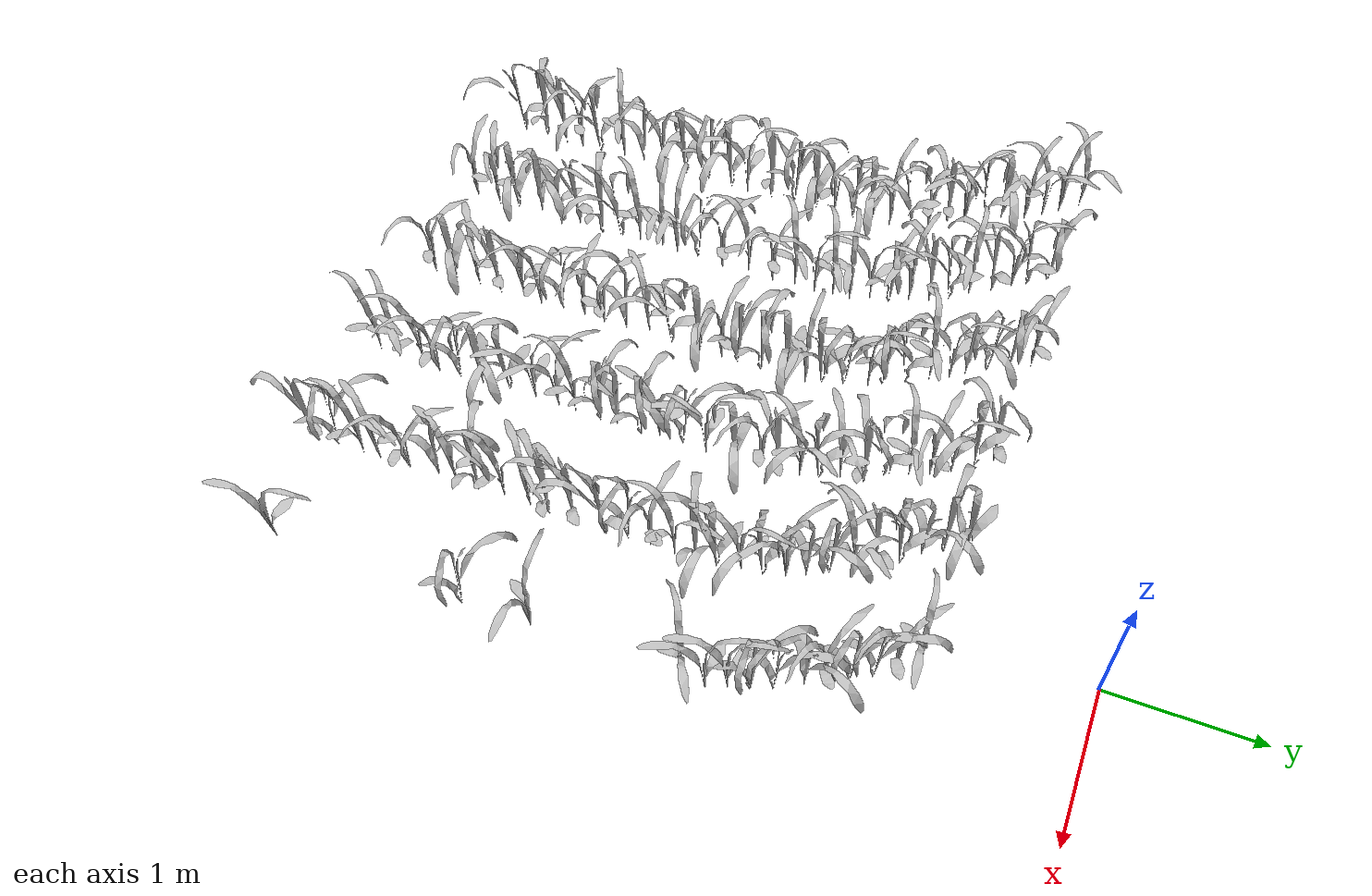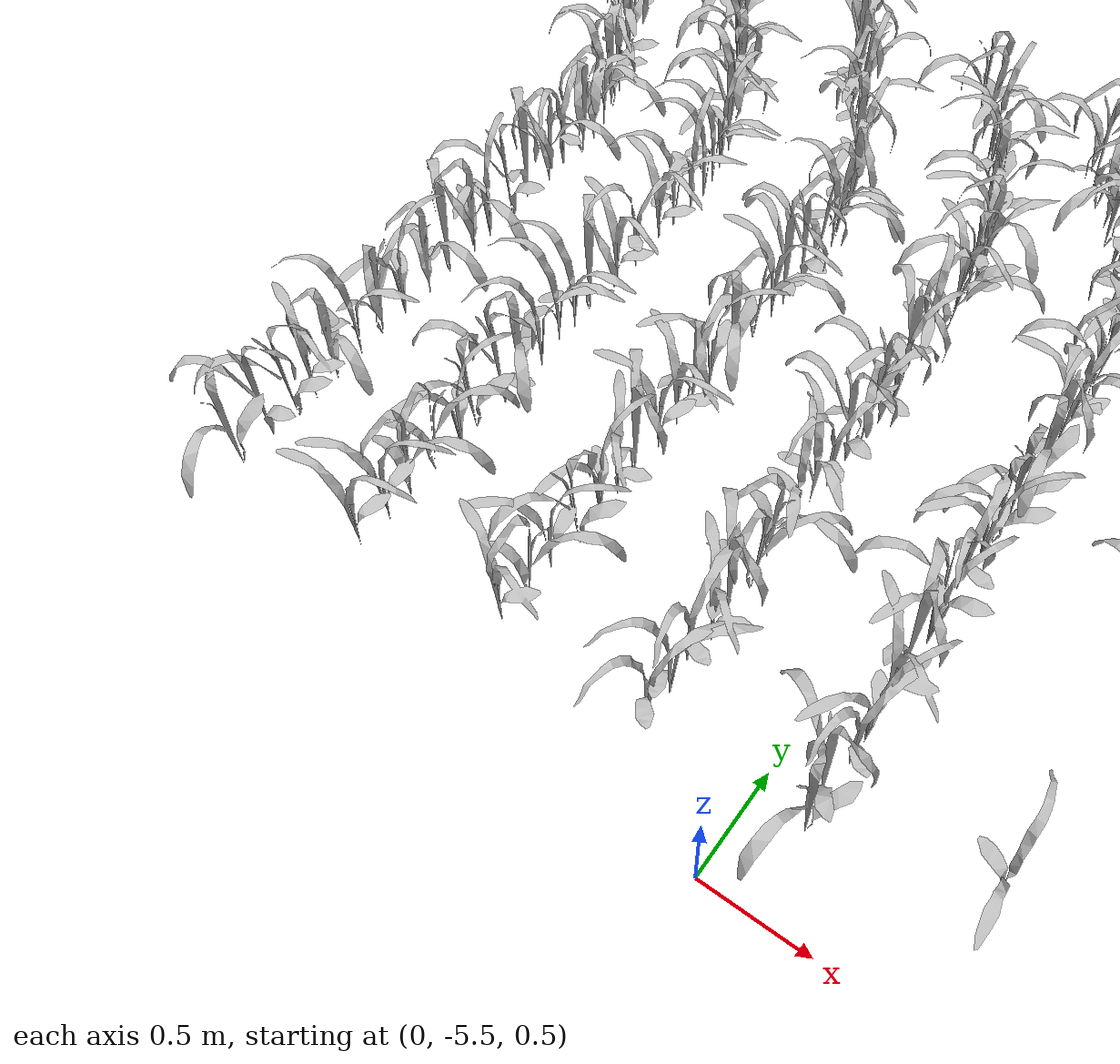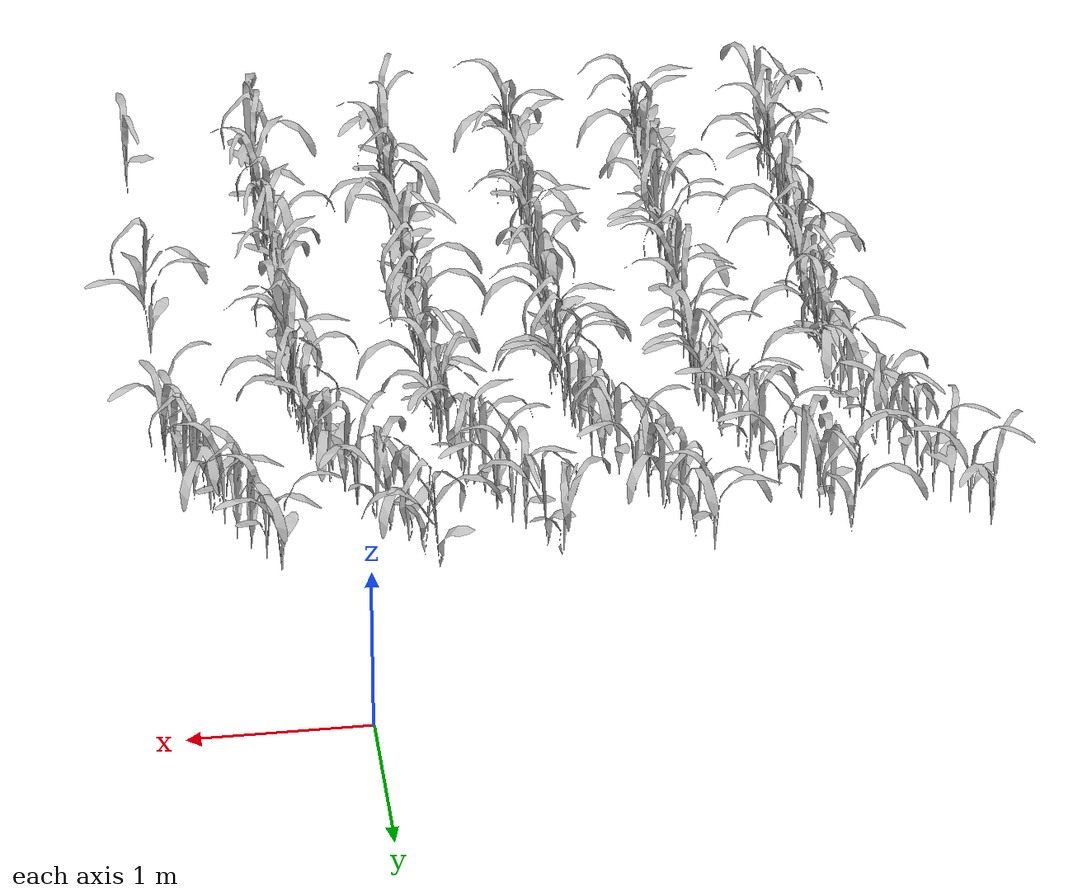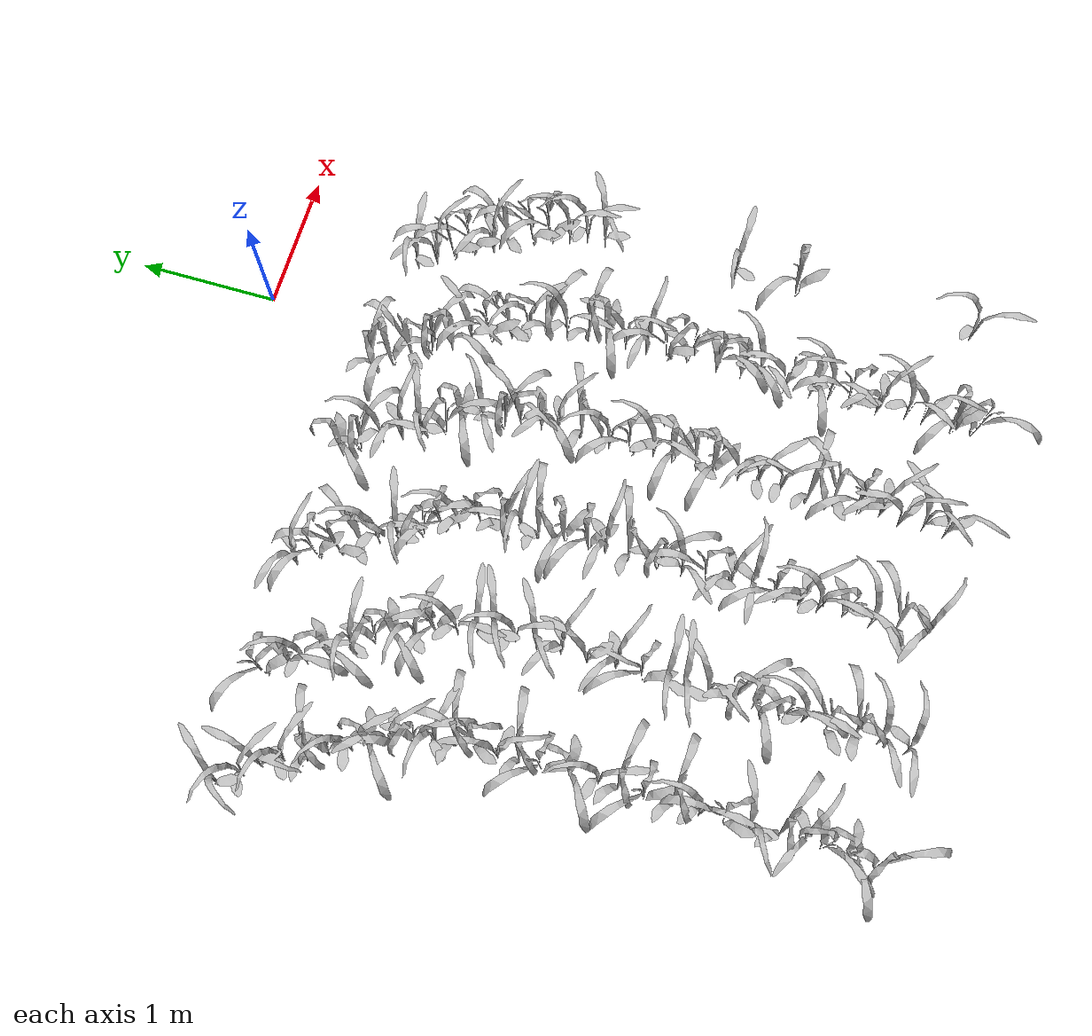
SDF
<sdf version="1.6">
 <world name="default">
  <include>
   <uri>model://maize_01</uri>
   <pose>-2.8149662046243322 -5.036532200256407 0.2987472165300224 0.0 0.0 5.894875012676836</pose>
   <name>maize_01_0000</name>
   <static>true</static>
  </include>
  <include>
   <uri>model://maize_01</uri>
   <pose>-2.809477527307368 -4.8400392186208 0.2987472165300224 0.0 0.0 4.363037747194006</pose>
   <name>maize_01_0001</name>
   <static>true</static>
  </include>
  <include>
   <uri>model://maize_01</uri>
   <pose>-2.7934535225200245 -4.68458728142989 0.2987472165300224 0.0 0.0 4.82953336246158</pose>
   <name>maize_01_0002</name>
   <static>true</static>
  </include>
  <include>
   <uri>model://maize_02</uri>
   <pose>-2.796779158858809 -4.5589871454011 0.2987472165300224 0.0 0.0 4.8684863078724385</pose>
   <name>maize_02_0003</name>
   <static>true</static>
  </include>
  <include>
   <uri>model://maize_01</uri>
   <pose>-2.795504382018359 -4.414495596811592 0.2987472165300224 0.0 0.0 0.4380697121282974</pose>
   <name>maize_01_0004</name>
   <static>true</static>
  </include>
  <include>
   <uri>model://maize_02</uri>
   <pose>-2.810753175358018 -4.226863867417673 0.2987472165300224 0.0 0.0 2.5570488509744598</pose>
   <name>maize_02_0005</name>
   <static>true</static>
  </include>
  <include>
   <uri>model://maize_01</uri>
   <pose>-2.81115481818274 -4.068038992379891 0.2987472165300224 0.0 0.0 2.433150421425094</pose>
   <name>maize_01_0006</name>
   <static>true</static>
  </include>
  <include>
   <uri>model://maize_02</uri>
   <pose>-2.8059342616971032 -3.9068965869558956 0.2987472165300224 0.0 0.0 0.46947598814061914</pose>
   <name>maize_02_0007</name>
   <static>true</static>
  </include>
  <include>
   <uri>model://maize_01</uri>
   <pose>-2.795099697665013 -3.7324073315395716 0.2987472165300224 0.0 0.0 0.7222739742540812</pose>
   <name>maize_01_0008</name>
   <static>true</static>
  </include>
  <include>
   <uri>model://maize_01</uri>
   <pose>-2.8096855687190865 -3.5520285328730514 0.2987472165300224 0.0 0.0 3.2039003910198036</pose>
   <name>maize_01_0009</name>
   <static>true</static>
  </include>
  <include>
   <uri>model://maize_01</uri>
   <pose>-2.7974254057102166 -3.3761085308729215 0.2997633349279468 0.0 0.0 0.6338193416331112</pose>
   <name>maize_01_0010</name>
   <static>true</static>
  </include>
  <include>
   <uri>model://maize_02</uri>
   <pose>-2.7935960507060424 -3.2483509228334326 0.2997633349279468 0.0 0.0 0.8870863604376874</pose>
   <name>maize_02_0011</name>
   <static>true</static>
  </include>
  <include>
   <uri>model://maize_01</uri>
   <pose>-2.7944472227529724 -3.057295577552061 0.2997633349279468 0.0 0.0 4.464149751738774</pose>
   <name>maize_01_0012</name>
   <static>true</static>
  </include>
  <include>
   <uri>model://maize_01</uri>
   <pose>-2.8186819191843164 -2.8945732437068434 0.3000073711710849 0.0 0.0 3.1398318236015252</pose>
   <name>maize_01_0013</name>
   <static>true</static>
  </include>
  <include>
   <uri>model://maize_01</uri>
   <pose>-2.802429662213426 -2.732400205703364 0.3000073711710849 0.0 0.0 0.9747646402250957</pose>
   <name>maize_01_0014</name>
   <static>true</static>
  </include>
  <include>
   <uri>model://maize_02</uri>
   <pose>-2.8135162554699322 -2.5912148178040884 0.3000073711710849 0.0 0.0 4.017603059819496</pose>
   <name>maize_02_0015</name>
   <static>true</static>
  </include>
  <include>
   <uri>model://maize_01</uri>
   <pose>-2.7914492188478732 -2.445866679618181 0.3000073711710849 0.0 0.0 2.224783643792515</pose>
   <name>maize_01_0016</name>
   <static>true</static>
  </include>
  <include>
   <uri>model://maize_01</uri>
   <pose>-2.8083234187623902 -2.320516576724049 0.3000073711710849 0.0 0.0 0.9779870854339036</pose>
   <name>maize_01_0017</name>
   <static>true</static>
  </include>
  <include>
   <uri>model://maize_02</uri>
   <pose>-2.837392890390448 -2.18724849604011 0.3000073711710849 0.0 0.0 1.9218371855780423</pose>
   <name>maize_02_0018</name>
   <static>true</static>
  </include>
  <include>
   <uri>model://maize_01</uri>
   <pose>-2.877807266111874 -2.0593476101850006 0.3000073711710849 0.0 0.0 5.924432845800086</pose>
   <name>maize_01_0019</name>
   <static>true</static>
  </include>
  <include>
   <uri>model://maize_02</uri>
   <pose>-2.9191221647541665 -1.9238190918331617 0.3000073711710849 0.0 0.0 4.4604900075646245</pose>
   <name>maize_02_0020</name>
   <static>true</static>
  </include>
  <include>
   <uri>model://maize_01</uri>
   <pose>-2.978187307036609 -1.8011241727258536 0.3000073711710849 0.0 0.0 4.599854090873884</pose>
   <name>maize_01_0021</name>
   <static>true</static>
  </include>
  <include>
   <uri>model://maize_02</uri>
   <pose>-3.033159196684417 -1.6951025352394338 0.3000073711710849 0.0 0.0 1.3549015476638713</pose>
   <name>maize_02_0022</name>
   <static>true</static>
  </include>
  <include>
   <uri>model://maize_01</uri>
   <pose>-3.1022475428299114 -1.5675113088376633 0.3000073711710849 0.0 0.0 5.831072665439621</pose>
   <name>maize_01_0023</name>
   <static>true</static>
  </include>
  <include>
   <uri>model://maize_01</uri>
   <pose>-3.156738683040348 -1.4574072585174689 0.3000073711710849 0.0 0.0 1.1311388279408856</pose>
   <name>maize_01_0024</name>
   <static>true</static>
  </include>
  <include>
   <uri>model://maize_02</uri>
   <pose>-3.21237578114864 -1.3020230036605802 0.29996374720717184 0.0 0.0 1.7867516960716405</pose>
   <name>maize_02_0025</name>
   <static>true</static>
  </include>
  <include>
   <uri>model://maize_02</uri>
   <pose>-3.289669552640869 -1.1908592170727783 0.29996374720717184 0.0 0.0 3.5619589033067767</pose>
   <name>maize_02_0026</name>
   <static>true</static>
  </include>
  <include>
   <uri>model://maize_02</uri>
   <pose>-3.3761114003888917 -1.088862409862166 0.29996374720717184 0.0 0.0 1.6566801443292551</pose>
   <name>maize_02_0027</name>
   <static>true</static>
  </include>
  <include>
   <uri>model://maize_02</uri>
   <pose>-3.4727268601063535 -0.963268275777607 0.29996374720717184 0.0 0.0 3.033199364283431</pose>
   <name>maize_02_0028</name>
   <static>true</static>
  </include>
  <include>
   <uri>model://maize_02</uri>
   <pose>-2.0720008120603652 -5.056959439686576 0.2986650895739808 0.0 0.0 5.433162248212113</pose>
   <name>maize_02_0072</name>
   <static>true</static>
  </include>
  <include>
   <uri>model://maize_02</uri>
   <pose>-2.0604202672663607 -4.876991809399276 0.2986650895739808 0.0 0.0 5.732482879605926</pose>
   <name>maize_02_0073</name>
   <static>true</static>
  </include>
  <include>
   <uri>model://maize_01</uri>
   <pose>-2.0623178033263856 -4.728139188529193 0.2986650895739808 0.0 0.0 1.1685631404289298</pose>
   <name>maize_01_0074</name>
   <static>true</static>
  </include>
  <include>
   <uri>model://maize_01</uri>
   <pose>-2.0725461581432794 -4.546987889401581 0.2986650895739808 0.0 0.0 1.6788264592846718</pose>
   <name>maize_01_0075</name>
   <static>true</static>
  </include>
  <include>
   <uri>model://maize_02</uri>
   <pose>-2.045092617244395 -4.389387876042935 0.29950354338867896 0.0 0.0 0.2961285172845409</pose>
   <name>maize_02_0076</name>
   <static>true</static>
  </include>
  <include>
   <uri>model://maize_01</uri>
   <pose>-2.0723696797346842 -4.247816933443073 0.29950354338867896 0.0 0.0 5.338776407005515</pose>
   <name>maize_01_0077</name>
   <static>true</static>
  </include>
  <include>
   <uri>model://maize_01</uri>
   <pose>-2.051345492641678 -4.060346822229589 0.29950354338867896 0.0 0.0 4.309868092103136</pose>
   <name>maize_01_0078</name>
   <static>true</static>
  </include>
  <include>
   <uri>model://maize_01</uri>
   <pose>-2.061749816803312 -3.9255076257861146 0.29950354338867896 0.0 0.0 6.275968553937282</pose>
   <name>maize_01_0079</name>
   <static>true</static>
  </include>
  <include>
   <uri>model://maize_02</uri>
   <pose>-2.0497267231624785 -3.7733650203013442 0.2997755151784565 0.0 0.0 2.9649433481723713</pose>
   <name>maize_02_0080</name>
   <static>true</static>
  </include>
  <include>
   <uri>model://maize_02</uri>
   <pose>-2.0664115051492202 -3.6102853509258717 0.2997755151784565 0.0 0.0 2.3529346517370366</pose>
   <name>maize_02_0081</name>
   <static>true</static>
  </include>
  <include>
   <uri>model://maize_02</uri>
   <pose>-2.057536152541018 -3.496669215509953 0.2997755151784565 0.0 0.0 2.2343980601328997</pose>
   <name>maize_02_0082</name>
   <static>true</static>
  </include>
  <include>
   <uri>model://maize_01</uri>
   <pose>-2.0747892759641062 -3.3461553845241734 0.2997755151784565 0.0 0.0 2.995296953165401</pose>
   <name>maize_01_0083</name>
   <static>true</static>
  </include>
  <include>
   <uri>model://maize_02</uri>
   <pose>-2.042679067957536 -3.153340965036183 0.3005045593256401 0.0 0.0 4.853848408779754</pose>
   <name>maize_02_0084</name>
   <static>true</static>
  </include>
  <include>
   <uri>model://maize_02</uri>
   <pose>-2.066312806527844 -2.966736639688672 0.3005045593256401 0.0 0.0 3.4791285214319725</pose>
   <name>maize_02_0085</name>
   <static>true</static>
  </include>
  <include>
   <uri>model://maize_02</uri>
   <pose>-2.0472140212766807 -2.785227585283933 0.300505825426684 0.0 0.0 4.858011875261052</pose>
   <name>maize_02_0086</name>
   <static>true</static>
  </include>
  <include>
   <uri>model://maize_02</uri>
   <pose>-2.063437150846898 -2.6285160418578157 0.300505825426684 0.0 0.0 2.7062252617887546</pose>
   <name>maize_02_0087</name>
   <static>true</static>
  </include>
  <include>
   <uri>model://maize_02</uri>
   <pose>-2.0566367955301925 -2.48322024594746 0.300505825426684 0.0 0.0 0.8330236726733005</pose>
   <name>maize_02_0088</name>
   <static>true</static>
  </include>
  <include>
   <uri>model://maize_02</uri>
   <pose>-2.0588659573190085 -2.353149874308976 0.300505825426684 0.0 0.0 2.5830930511308527</pose>
   <name>maize_02_0089</name>
   <static>true</static>
  </include>
  <include>
   <uri>model://maize_02</uri>
   <pose>-2.0807914285906284 -2.239024802362115 0.300505825426684 0.0 0.0 2.3634920312108387</pose>
   <name>maize_02_0090</name>
   <static>true</static>
  </include>
  <include>
   <uri>model://maize_02</uri>
   <pose>-2.117711133443916 -2.108787300687137 0.300505825426684 0.0 0.0 0.5130881768126063</pose>
   <name>maize_02_0091</name>
   <static>true</static>
  </include>
  <include>
   <uri>model://maize_01</uri>
   <pose>-2.1458165295815115 -1.9753276451150692 0.300505825426684 0.0 0.0 3.6449755504775903</pose>
   <name>maize_01_0092</name>
   <static>true</static>
  </include>
  <include>
   <uri>model://maize_02</uri>
   <pose>-2.2190546041360117 -1.858409822132397 0.300505825426684 0.0 0.0 1.8884098040305333</pose>
   <name>maize_02_0093</name>
   <static>true</static>
  </include>
  <include>
   <uri>model://maize_01</uri>
   <pose>-2.2611791398209795 -1.7240152191247777 0.300505825426684 0.0 0.0 4.726343638161984</pose>
   <name>maize_01_0094</name>
   <static>true</static>
  </include>
  <include>
   <uri>model://maize_01</uri>
   <pose>-2.320630989299302 -1.6092773375165412 0.300505825426684 0.0 0.0 6.02268871512266</pose>
   <name>maize_01_0095</name>
   <static>true</static>
  </include>
  <include>
   <uri>model://maize_02</uri>
   <pose>-2.3890988468553354 -1.4864337133009748 0.300505825426684 0.0 0.0 2.2241346780266924</pose>
   <name>maize_02_0096</name>
   <static>true</static>
  </include>
  <include>
   <uri>model://maize_01</uri>
   <pose>-2.4942296603595113 -1.3516524418493538 0.300505825426684 0.0 0.0 5.067955373351796</pose>
   <name>maize_01_0097</name>
   <static>true</static>
  </include>
  <include>
   <uri>model://maize_02</uri>
   <pose>-2.573086142763024 -1.2311695660069628 0.300505825426684 0.0 0.0 0.9613515812656785</pose>
   <name>maize_02_0098</name>
   <static>true</static>
  </include>
  <include>
   <uri>model://maize_01</uri>
   <pose>-2.630314857241284 -1.1434964820458988 0.300505825426684 0.0 0.0 5.491621203564096</pose>
   <name>maize_01_0099</name>
   <static>true</static>
  </include>
  <include>
   <uri>model://maize_01</uri>
   <pose>-2.7142903294187075 -1.0083810267722384 0.300505825426684 0.0 0.0 3.459822099916455</pose>
   <name>maize_01_0100</name>
   <static>true</static>
  </include>
  <include>
   <uri>model://maize_02</uri>
   <pose>-1.3176883264639188 -4.999122001130901 0.30100728106067154 0.0 0.0 4.849215149881769</pose>
   <name>maize_02_0144</name>
   <static>true</static>
  </include>
  <include>
   <uri>model://maize_01</uri>
   <pose>-1.3044441138169038 -4.833652269453594 0.30100728106067154 0.0 0.0 1.3756970445543548</pose>
   <name>maize_01_0145</name>
   <static>true</static>
  </include>
  <include>
   <uri>model://maize_02</uri>
   <pose>-1.3159288714915969 -4.6611741501691295 0.3007635409578325 0.0 0.0 5.9312387431311775</pose>
   <name>maize_02_0146</name>
   <static>true</static>
  </include>
  <include>
   <uri>model://maize_01</uri>
   <pose>-1.2928783217639552 -4.4840702878999315 0.3007635409578325 0.0 0.0 5.0212429052187035</pose>
   <name>maize_01_0147</name>
   <static>true</static>
  </include>
  <include>
   <uri>model://maize_02</uri>
   <pose>-1.308439348235581 -4.313289320598604 0.3007635409578325 0.0 0.0 0.376532094322456</pose>
   <name>maize_02_0148</name>
   <static>true</static>
  </include>
  <include>
   <uri>model://maize_02</uri>
   <pose>-1.2989530972423815 -4.185526734124149 0.3007635409578325 0.0 0.0 4.370226161553686</pose>
   <name>maize_02_0149</name>
   <static>true</static>
  </include>
  <include>
   <uri>model://maize_01</uri>
   <pose>-1.3165651393649427 -4.025469003011236 0.30078746926215977 0.0 0.0 2.986218794013947</pose>
   <name>maize_01_0150</name>
   <static>true</static>
  </include>
  <include>
   <uri>model://maize_02</uri>
   <pose>-1.3037715092593978 -3.860668101711862 0.30078746926215977 0.0 0.0 5.359588284860161</pose>
   <name>maize_02_0151</name>
   <static>true</static>
  </include>
  <include>
   <uri>model://maize_02</uri>
   <pose>-1.297380330083812 -3.7162183948160394 0.30078746926215977 0.0 0.0 4.736490804135788</pose>
   <name>maize_02_0152</name>
   <static>true</static>
  </include>
  <include>
   <uri>model://maize_01</uri>
   <pose>-1.316166406136525 -3.565118656605389 0.30078746926215977 0.0 0.0 2.4582620892883096</pose>
   <name>maize_01_0153</name>
   <static>true</static>
  </include>
  <include>
   <uri>model://maize_02</uri>
   <pose>-1.3258450556121775 -3.3975421460514297 0.30078746926215977 0.0 0.0 6.063569559256593</pose>
   <name>maize_02_0154</name>
   <static>true</static>
  </include>
  <include>
   <uri>model://maize_01</uri>
   <pose>-1.3098911376527915 -3.235330778236067 0.30078746926215977 0.0 0.0 6.0332334576997955</pose>
   <name>maize_01_0155</name>
   <static>true</static>
  </include>
  <include>
   <uri>model://maize_01</uri>
   <pose>-1.3108965167358584 -3.036259954309828 0.30078746926215977 0.0 0.0 1.1230082805051085</pose>
   <name>maize_01_0156</name>
   <static>true</static>
  </include>
  <include>
   <uri>model://maize_02</uri>
   <pose>-1.307170840577107 -2.8743595657683105 0.30078746926215977 0.0 0.0 5.164042835300947</pose>
   <name>maize_02_0157</name>
   <static>true</static>
  </include>
  <include>
   <uri>model://maize_01</uri>
   <pose>-1.305677983968858 -2.758904982072988 0.30078746926215977 0.0 0.0 3.4325214249086438</pose>
   <name>maize_01_0158</name>
   <static>true</static>
  </include>
  <include>
   <uri>model://maize_01</uri>
   <pose>-1.300446603800064 -2.5928284588072223 0.30078746926215977 0.0 0.0 3.7686745329111035</pose>
   <name>maize_01_0159</name>
   <static>true</static>
  </include>
  <include>
   <uri>model://maize_01</uri>
   <pose>-1.3223449868264716 -2.4215631675854965 0.3011803336721711 0.0 0.0 1.0015635458264844</pose>
   <name>maize_01_0160</name>
   <static>true</static>
  </include>
  <include>
   <uri>model://maize_02</uri>
   <pose>-1.3083756452233664 -2.291093184187044 0.3011803336721711 0.0 0.0 2.1199460107793624</pose>
   <name>maize_02_0161</name>
   <static>true</static>
  </include>
  <include>
   <uri>model://maize_01</uri>
   <pose>-1.3374953898736959 -2.1919094751587656 0.3011803336721711 0.0 0.0 0.41508934552433835</pose>
   <name>maize_01_0162</name>
   <static>true</static>
  </include>
  <include>
   <uri>model://maize_01</uri>
   <pose>-1.3606913270861682 -2.0415580921484486 0.3011803336721711 0.0 0.0 2.624029974497765</pose>
   <name>maize_01_0163</name>
   <static>true</static>
  </include>
  <include>
   <uri>model://maize_02</uri>
   <pose>-1.4101097088631314 -1.8960116514780283 0.3011803336721711 0.0 0.0 0.7113395896714589</pose>
   <name>maize_02_0164</name>
   <static>true</static>
  </include>
  <include>
   <uri>model://maize_01</uri>
   <pose>-1.4610827351109983 -1.808749535708244 0.3011803336721711 0.0 0.0 3.3918469497681047</pose>
   <name>maize_01_0165</name>
   <static>true</static>
  </include>
  <include>
   <uri>model://maize_01</uri>
   <pose>-1.5349828829869294 -1.6830370677482176 0.3011803336721711 0.0 0.0 6.011367915225509</pose>
   <name>maize_01_0166</name>
   <static>true</static>
  </include>
  <include>
   <uri>model://maize_02</uri>
   <pose>-1.6027118939284783 -1.5364710748824775 0.3011995378273948 0.0 0.0 2.508097887463512</pose>
   <name>maize_02_0167</name>
   <static>true</static>
  </include>
  <include>
   <uri>model://maize_02</uri>
   <pose>-1.6590169220022284 -1.4166918494185994 0.3011995378273948 0.0 0.0 0.7554248168794033</pose>
   <name>maize_02_0168</name>
   <static>true</static>
  </include>
  <include>
   <uri>model://maize_01</uri>
   <pose>-1.7266297485310702 -1.3281589076374771 0.3011995378273948 0.0 0.0 1.7499426716465458</pose>
   <name>maize_01_0169</name>
   <static>true</static>
  </include>
  <include>
   <uri>model://maize_01</uri>
   <pose>-1.8022569708049965 -1.2008077772055523 0.3011995378273948 0.0 0.0 2.667518439792506</pose>
   <name>maize_01_0170</name>
   <static>true</static>
  </include>
  <include>
   <uri>model://maize_01</uri>
   <pose>-1.868827663570576 -1.0692819059104568 0.3011995378273948 0.0 0.0 3.5063519383323656</pose>
   <name>maize_01_0171</name>
   <static>true</static>
  </include>
  <include>
   <uri>model://maize_02</uri>
   <pose>-1.9535512376096669 -0.939154619003064 0.3011995378273948 0.0 0.0 5.065966410210677</pose>
   <name>maize_02_0172</name>
   <static>true</static>
  </include>
  <include>
   <uri>model://maize_02</uri>
   <pose>-0.5614538914553544 -5.0059082575310265 0.300587123382757 0.0 0.0 3.366859064402799</pose>
   <name>maize_02_0216</name>
   <static>true</static>
  </include>
  <include>
   <uri>model://maize_02</uri>
   <pose>-0.5499090134750577 -4.859622754299679 0.300587123382757 0.0 0.0 2.9401766939155043</pose>
   <name>maize_02_0217</name>
   <static>true</static>
  </include>
  <include>
   <uri>model://maize_02</uri>
   <pose>-0.5737698679292256 -4.696426991122593 0.300587123382757 0.0 0.0 3.8257829279535795</pose>
   <name>maize_02_0218</name>
   <static>true</static>
  </include>
  <include>
   <uri>model://maize_02</uri>
   <pose>-0.5408905836633096 -4.563657733062943 0.300587123382757 0.0 0.0 4.458456815857568</pose>
   <name>maize_02_0219</name>
   <static>true</static>
  </include>
  <include>
   <uri>model://maize_01</uri>
   <pose>-0.5578847991219893 -4.416932798471323 0.300587123382757 0.0 0.0 2.983395753591305</pose>
   <name>maize_01_0220</name>
   <static>true</static>
  </include>
  <include>
   <uri>model://maize_01</uri>
   <pose>-0.5478933385591802 -4.248799662718317 0.300587123382757 0.0 0.0 1.5980117704825267</pose>
   <name>maize_01_0221</name>
   <static>true</static>
  </include>
  <include>
   <uri>model://maize_01</uri>
   <pose>-0.5786325352182276 -4.073014658069661 0.300587123382757 0.0 0.0 0.7252354954964114</pose>
   <name>maize_01_0222</name>
   <static>true</static>
  </include>
  <include>
   <uri>model://maize_02</uri>
   <pose>-0.5676092737415457 -3.877402080845298 0.300587123382757 0.0 0.0 1.0160818601160815</pose>
   <name>maize_02_0223</name>
   <static>true</static>
  </include>
  <include>
   <uri>model://maize_02</uri>
   <pose>-0.5728367511270254 -3.719442526839416 0.300587123382757 0.0 0.0 1.402545294195929</pose>
   <name>maize_02_0224</name>
   <static>true</static>
  </include>
  <include>
   <uri>model://maize_02</uri>
   <pose>-0.5575463291365568 -3.5901605506141325 0.300587123382757 0.0 0.0 3.470565411244737</pose>
   <name>maize_02_0225</name>
   <static>true</static>
  </include>
  <include>
   <uri>model://maize_01</uri>
   <pose>-0.563752248300698 -3.418291744072269 0.2996165196512641 0.0 0.0 3.6808051544241636</pose>
   <name>maize_01_0226</name>
   <static>true</static>
  </include>
  <include>
   <uri>model://maize_01</uri>
   <pose>-0.5538704461912232 -3.298961327491963 0.2996165196512641 0.0 0.0 2.0447659972145478</pose>
   <name>maize_01_0227</name>
   <static>true</static>
  </include>
  <include>
   <uri>model://maize_01</uri>
   <pose>-0.5515959242807449 -3.130178505051344 0.2996165196512641 0.0 0.0 3.7752268264366715</pose>
   <name>maize_01_0228</name>
   <static>true</static>
  </include>
  <include>
   <uri>model://maize_02</uri>
   <pose>-0.5494189523423374 -2.9988671686972017 0.2996165196512641 0.0 0.0 0.24600506511840822</pose>
   <name>maize_02_0229</name>
   <static>true</static>
  </include>
  <include>
   <uri>model://maize_01</uri>
   <pose>-0.5769538744853959 -2.8517060975864013 0.2996165196512641 0.0 0.0 3.055366931218133</pose>
   <name>maize_01_0230</name>
   <static>true</static>
  </include>
  <include>
   <uri>model://maize_02</uri>
   <pose>-0.5637437635384448 -2.6929200960305875 0.2996165196512641 0.0 0.0 0.9240557947288915</pose>
   <name>maize_02_0231</name>
   <static>true</static>
  </include>
  <include>
   <uri>model://maize_01</uri>
   <pose>-0.5467797973447157 -2.494498488085832 0.3010633590603995 0.0 0.0 1.1464303004256682</pose>
   <name>maize_01_0232</name>
   <static>true</static>
  </include>
  <include>
   <uri>model://maize_02</uri>
   <pose>-0.5771107350177724 -2.3281060786508516 0.3010633590603995 0.0 0.0 4.636810017058661</pose>
   <name>maize_02_0233</name>
   <static>true</static>
  </include>
  <include>
   <uri>model://maize_01</uri>
   <pose>-0.570153372182338 -2.211557395923927 0.3010633590603995 0.0 0.0 4.736909421752434</pose>
   <name>maize_01_0234</name>
   <static>true</static>
  </include>
  <include>
   <uri>model://maize_02</uri>
   <pose>-0.5880389256824501 -2.0789352859496772 0.3010633590603995 0.0 0.0 3.1506108616570994</pose>
   <name>maize_02_0235</name>
   <static>true</static>
  </include>
  <include>
   <uri>model://maize_01</uri>
   <pose>-0.6309058231669733 -1.9695549129884962 0.3010633590603995 0.0 0.0 0.18717130373189478</pose>
   <name>maize_01_0236</name>
   <static>true</static>
  </include>
  <include>
   <uri>model://maize_02</uri>
   <pose>-0.679540639605561 -1.8411556349392788 0.3010633590603995 0.0 0.0 5.833945010414845</pose>
   <name>maize_02_0237</name>
   <static>true</static>
  </include>
  <include>
   <uri>model://maize_01</uri>
   <pose>-0.6968199500387782 -1.6902401868982555 0.3010633590603995 0.0 0.0 4.3518507821074826</pose>
   <name>maize_01_0238</name>
   <static>true</static>
  </include>
  <include>
   <uri>model://maize_01</uri>
   <pose>-0.7846711770050618 -1.5979281024319534 0.3010633590603995 0.0 0.0 5.9094014700540765</pose>
   <name>maize_01_0239</name>
   <static>true</static>
  </include>
  <include>
   <uri>model://maize_02</uri>
   <pose>-0.8299964183911761 -1.4459207194204333 0.3010633590603995 0.0 0.0 2.5636665125381786</pose>
   <name>maize_02_0240</name>
   <static>true</static>
  </include>
  <include>
   <uri>model://maize_02</uri>
   <pose>-0.8999177129414717 -1.3246196477750554 0.3010633590603995 0.0 0.0 5.152004676673489</pose>
   <name>maize_02_0241</name>
   <static>true</static>
  </include>
  <include>
   <uri>model://maize_02</uri>
   <pose>-0.9604708563962137 -1.2070089009552658 0.3010633590603995 0.0 0.0 0.597187787147687</pose>
   <name>maize_02_0242</name>
   <static>true</static>
  </include>
  <include>
   <uri>model://maize_01</uri>
   <pose>-1.060193644345605 -1.0844052460366476 0.3010633590603995 0.0 0.0 0.3230039877243757</pose>
   <name>maize_01_0243</name>
   <static>true</static>
  </include>
  <include>
   <uri>model://maize_01</uri>
   <pose>-1.133171863004183 -0.9772882012484521 0.3010633590603995 0.0 0.0 4.730460021239366</pose>
   <name>maize_01_0244</name>
   <static>true</static>
  </include>
  <include>
   <uri>model://maize_01</uri>
   <pose>0.206851532668648 -5.037472867522743 0.30050119119174484 0.0 0.0 5.3430615895009685</pose>
   <name>maize_01_0289</name>
   <static>true</static>
  </include>
  <include>
   <uri>model://maize_01</uri>
   <pose>0.19174299608121784 -4.8961191471492445 0.30050119119174484 0.0 0.0 3.333875970726325</pose>
   <name>maize_01_0290</name>
   <static>true</static>
  </include>
  <include>
   <uri>model://maize_02</uri>
   <pose>0.20829244337736588 -4.698648887510836 0.30050119119174484 0.0 0.0 3.4991910408133813</pose>
   <name>maize_02_0291</name>
   <static>true</static>
  </include>
  <include>
   <uri>model://maize_02</uri>
   <pose>0.2078485350173185 -4.577955276691419 0.30050119119174484 0.0 0.0 0.03984344435655604</pose>
   <name>maize_02_0292</name>
   <static>true</static>
  </include>
  <include>
   <uri>model://maize_02</uri>
   <pose>0.19519551061410637 -4.3815723567101115 0.30050119119174484 0.0 0.0 4.489855737714042</pose>
   <name>maize_02_0293</name>
   <static>true</static>
  </include>
  <include>
   <uri>model://maize_01</uri>
   <pose>0.17704368936959083 -4.1878366376891725 0.30050119119174484 0.0 0.0 2.63302462174602</pose>
   <name>maize_01_0294</name>
   <static>true</static>
  </include>
  <include>
   <uri>model://maize_02</uri>
   <pose>0.1993566542881016 -4.04314126195257 0.3008109943421454 0.0 0.0 0.12547630267941615</pose>
   <name>maize_02_0295</name>
   <static>true</static>
  </include>
  <include>
   <uri>model://maize_01</uri>
   <pose>0.18459959785573757 -3.9113317363583744 0.3008109943421454 0.0 0.0 4.254124896891692</pose>
   <name>maize_01_0296</name>
   <static>true</static>
  </include>
  <include>
   <uri>model://maize_02</uri>
   <pose>0.17815967370061683 -3.732970409712981 0.3008109943421454 0.0 0.0 3.83479237996968</pose>
   <name>maize_02_0297</name>
   <static>true</static>
  </include>
  <include>
   <uri>model://maize_02</uri>
   <pose>0.18877850561733814 -3.5509252488101675 0.3008109943421454 0.0 0.0 6.061523221815795</pose>
   <name>maize_02_0298</name>
   <static>true</static>
  </include>
  <include>
   <uri>model://maize_01</uri>
   <pose>0.19012622615880373 -3.4220424219458114 0.3008109943421454 0.0 0.0 4.771894554900923</pose>
   <name>maize_01_0299</name>
   <static>true</static>
  </include>
  <include>
   <uri>model://maize_01</uri>
   <pose>0.1916890605387749 -3.251509650010711 0.3008109943421454 0.0 0.0 4.996525972733985</pose>
   <name>maize_01_0300</name>
   <static>true</static>
  </include>
  <include>
   <uri>model://maize_01</uri>
   <pose>0.20299509307327382 -3.0448351260481274 0.3008109943421454 0.0 0.0 5.642374025598007</pose>
   <name>maize_01_0301</name>
   <static>true</static>
  </include>
  <include>
   <uri>model://maize_01</uri>
   <pose>0.1855607927569032 -2.9017002776866114 0.3008109943421454 0.0 0.0 2.7193758587005266</pose>
   <name>maize_01_0302</name>
   <static>true</static>
  </include>
  <include>
   <uri>model://maize_02</uri>
   <pose>0.1862331656679224 -2.752027008635573 0.3008109943421454 0.0 0.0 5.166560987730815</pose>
   <name>maize_02_0303</name>
   <static>true</static>
  </include>
  <include>
   <uri>model://maize_02</uri>
   <pose>0.18339804425626108 -2.6015128211344103 0.3008109943421454 0.0 0.0 3.584494192236813</pose>
   <name>maize_02_0304</name>
   <static>true</static>
  </include>
  <include>
   <uri>model://maize_01</uri>
   <pose>0.19688277259571654 -2.4574685480028537 0.3008109943421454 0.0 0.0 4.27193038728251</pose>
   <name>maize_01_0305</name>
   <static>true</static>
  </include>
  <include>
   <uri>model://maize_01</uri>
   <pose>0.17696825389793983 -2.336450401863148 0.3008109943421454 0.0 0.0 0.6848996170766957</pose>
   <name>maize_01_0306</name>
   <static>true</static>
  </include>
  <include>
   <uri>model://maize_02</uri>
   <pose>0.15742866424599747 -2.186695475122919 0.3008109943421454 0.0 0.0 0.42073733588293344</pose>
   <name>maize_02_0307</name>
   <static>true</static>
  </include>
  <include>
   <uri>model://maize_01</uri>
   <pose>0.1310337343117454 -2.060105621331226 0.3008109943421454 0.0 0.0 0.3865056123309891</pose>
   <name>maize_01_0308</name>
   <static>true</static>
  </include>
  <include>
   <uri>model://maize_02</uri>
   <pose>0.09609393766528587 -1.9264843300529064 0.3008109943421454 0.0 0.0 1.4677150342381051</pose>
   <name>maize_02_0309</name>
   <static>true</static>
  </include>
  <include>
   <uri>model://maize_01</uri>
   <pose>0.0506375576496312 -1.8140334001226035 0.3008109943421454 0.0 0.0 2.1651020707361486</pose>
   <name>maize_01_0310</name>
   <static>true</static>
  </include>
  <include>
   <uri>model://maize_01</uri>
   <pose>-0.020291151345367388 -1.6899153783181673 0.3008109943421454 0.0 0.0 3.157339709371394</pose>
   <name>maize_01_0311</name>
   <static>true</static>
  </include>
  <include>
   <uri>model://maize_02</uri>
   <pose>-0.07593208667829263 -1.5694511818478458 0.3008109943421454 0.0 0.0 3.0640323252815604</pose>
   <name>maize_02_0312</name>
   <static>true</static>
  </include>
  <include>
   <uri>model://maize_01</uri>
   <pose>-0.16949331669483156 -1.4464061424297918 0.3008109943421454 0.0 0.0 5.029683543078435</pose>
   <name>maize_01_0313</name>
   <static>true</static>
  </include>
  <include>
   <uri>model://maize_01</uri>
   <pose>-0.229593221951599 -1.3220893371348563 0.3008109943421454 0.0 0.0 0.2619451929054524</pose>
   <name>maize_01_0314</name>
   <static>true</static>
  </include>
  <include>
   <uri>model://maize_01</uri>
   <pose>-0.31889593558207063 -1.2126914289733206 0.3008109943421454 0.0 0.0 1.9143481540811316</pose>
   <name>maize_01_0315</name>
   <static>true</static>
  </include>
  <include>
   <uri>model://maize_01</uri>
   <pose>-0.3963364102438629 -1.0920563970506254 0.3008109943421454 0.0 0.0 3.889520270570686</pose>
   <name>maize_01_0316</name>
   <static>true</static>
  </include>
  <include>
   <uri>model://maize_01</uri>
   <pose>-0.4601228691860524 -0.9667422914776791 0.3008109943421454 0.0 0.0 0.6861747388067193</pose>
   <name>maize_01_0317</name>
   <static>true</static>
  </include>
  <include>
   <uri>model://maize_02</uri>
   <pose>0.9244920897131681 -4.888609775947494 0.3005871818746773 0.0 0.0 0.6712658090843604</pose>
   <name>maize_02_0362</name>
   <static>true</static>
  </include>
  <include>
   <uri>model://maize_01</uri>
   <pose>0.9273586824680045 -3.6417646550467686 0.3009972376399595 0.0 0.0 3.3248573932101846</pose>
   <name>maize_01_0370</name>
   <static>true</static>
  </include>
  <include>
   <uri>model://maize_02</uri>
   <pose>0.9224261817936437 -3.198698231499893 0.3009972376399595 0.0 0.0 2.1408223439310765</pose>
   <name>maize_02_0373</name>
   <static>true</static>
  </include>
  <include>
   <uri>model://maize_02</uri>
   <pose>0.9197416803572505 -2.2491811342575394 0.300992767274991 0.0 0.0 2.678109799795846</pose>
   <name>maize_02_0379</name>
   <static>true</static>
  </include>
  <include>
   <uri>model://maize_02</uri>
   <pose>0.9272380008688124 -2.11374135135867 0.300992767274991 0.0 0.0 0.9062387683142948</pose>
   <name>maize_02_0380</name>
   <static>true</static>
  </include>
  <include>
   <uri>model://maize_02</uri>
   <pose>0.8810199650787041 -1.9961708850258526 0.300992767274991 0.0 0.0 0.7516008160206998</pose>
   <name>maize_02_0381</name>
   <static>true</static>
  </include>
  <include>
   <uri>model://maize_01</uri>
   <pose>0.8461210841678672 -1.8700511453865245 0.300992767274991 0.0 0.0 3.167715953908394</pose>
   <name>maize_01_0382</name>
   <static>true</static>
  </include>
  <include>
   <uri>model://maize_01</uri>
   <pose>0.8021769188697492 -1.7490101523819968 0.300992767274991 0.0 0.0 2.609619411089729</pose>
   <name>maize_01_0383</name>
   <static>true</static>
  </include>
  <include>
   <uri>model://maize_01</uri>
   <pose>0.7198822771952755 -1.5959383983448376 0.300992767274991 0.0 0.0 1.9261478640788456</pose>
   <name>maize_01_0384</name>
   <static>true</static>
  </include>
  <include>
   <uri>model://maize_02</uri>
   <pose>0.6533072501124486 -1.4969475453132761 0.300992767274991 0.0 0.0 4.8597814932356345</pose>
   <name>maize_02_0385</name>
   <static>true</static>
  </include>
  <include>
   <uri>model://maize_01</uri>
   <pose>0.6006757781595222 -1.3628418354587264 0.300992767274991 0.0 0.0 2.848254604252199</pose>
   <name>maize_01_0386</name>
   <static>true</static>
  </include>
  <include>
   <uri>model://maize_01</uri>
   <pose>0.534405745050863 -1.2442229285937951 0.300992767274991 0.0 0.0 2.72861648655638</pose>
   <name>maize_01_0387</name>
   <static>true</static>
  </include>
  <include>
   <uri>model://maize_02</uri>
   <pose>0.45724016667050793 -1.1378224785210016 0.300992767274991 0.0 0.0 4.682820759331976</pose>
   <name>maize_02_0388</name>
   <static>true</static>
  </include>
  <include>
   <uri>model://maize_02</uri>
   <pose>0.3872995351705979 -1.021594250698208 0.300992767274991 0.0 0.0 2.270752267188626</pose>
   <name>maize_02_0389</name>
   <static>true</static>
  </include>
 </world>
</sdf>
